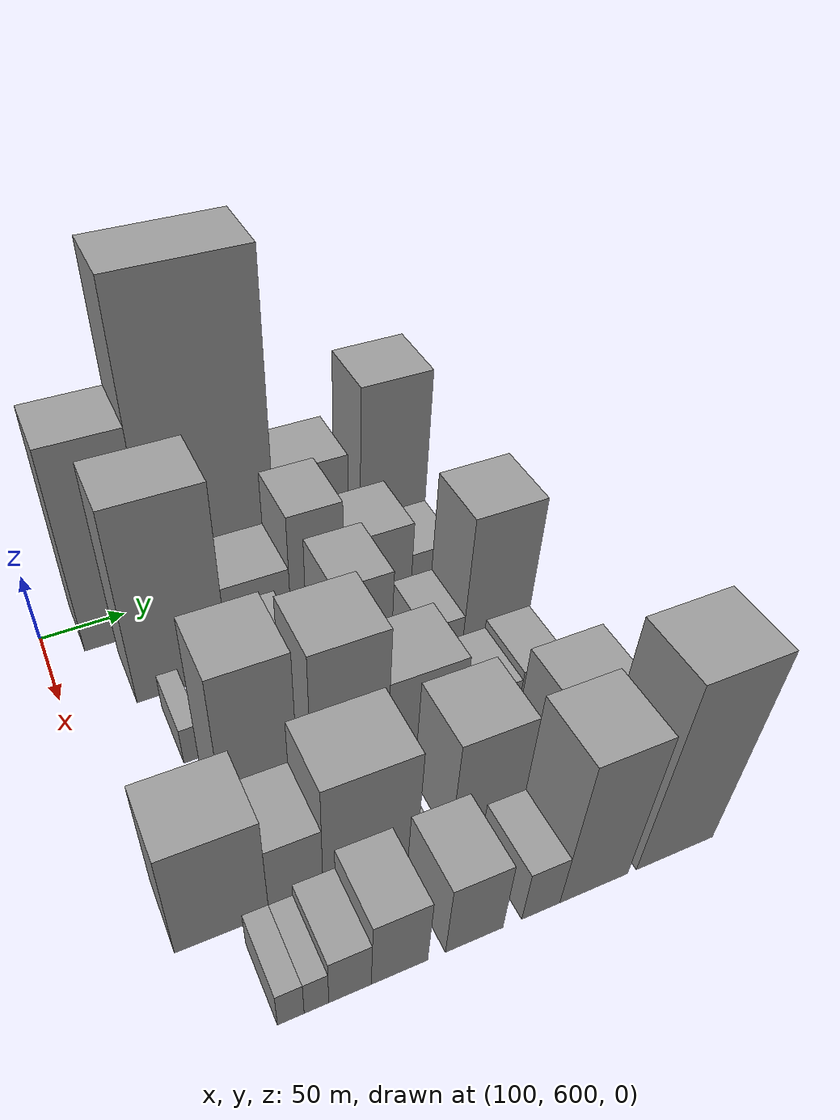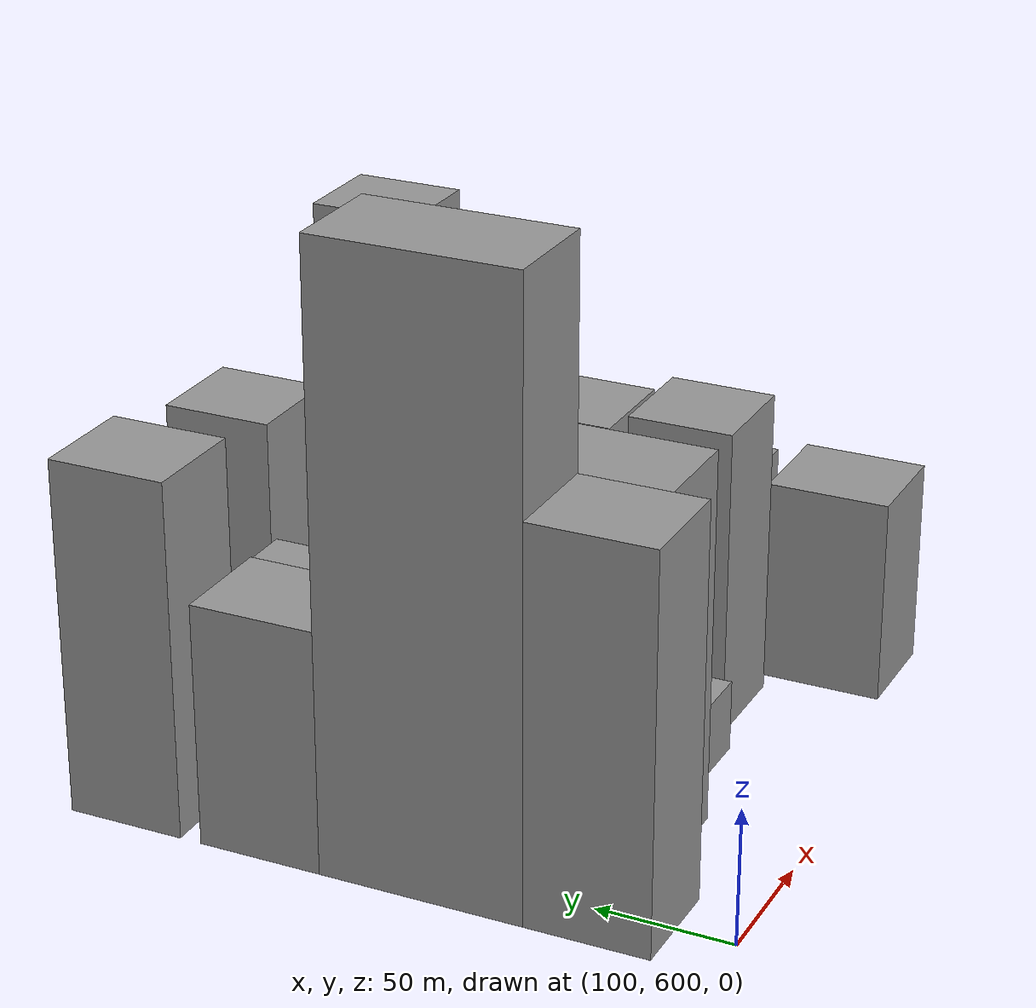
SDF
<sdf version="1.6">
 <world name="default">
  <model name="building_44">
   <static>1</static>
   <pose>100.0000 643.9634 0 0.000000 0.000000 0.000000</pose>
   <link name="link">
    <pose>0 0 72.00 0 0 0</pose>
    <collision name="collision"><geometry><box><size>40.0000 45.0365 144.0000</size></box></geometry></collision>
    <visual name="visual">
     <cast_shadows>0</cast_shadows>
     <geometry><box><size>40.0000 45.0365 144.0000</size></box></geometry>
     <material>
      <script>
       <uri>model://grey_wall/materials/scripts</uri>
       <uri>model://grey_wall/materials/textures</uri>
       <name>vrc/grey_wall</name>
      </script>
     </material>
    </visual>
   </link>
  </model>
  <model name="building_45">
   <static>1</static>
   <pose>100.0000 703.7926 0 0.000000 0.000000 0.000000</pose>
   <link name="link">
    <pose>0 0 112.50 0 0 0</pose>
    <collision name="collision"><geometry><box><size>40.0000 74.6218 225.0000</size></box></geometry></collision>
    <visual name="visual">
     <cast_shadows>0</cast_shadows>
     <geometry><box><size>40.0000 74.6218 225.0000</size></box></geometry>
     <material>
      <script>
       <uri>model://grey_wall/materials/scripts</uri>
       <uri>model://grey_wall/materials/textures</uri>
       <name>vrc/grey_wall</name>
      </script>
     </material>
    </visual>
   </link>
  </model>
  <model name="building_46">
   <static>1</static>
   <pose>100.0000 763.8912 0 0.000000 0.000000 0.000000</pose>
   <link name="link">
    <pose>0 0 45.00 0 0 0</pose>
    <collision name="collision"><geometry><box><size>40.0000 45.5754 90.0000</size></box></geometry></collision>
    <visual name="visual">
     <cast_shadows>0</cast_shadows>
     <geometry><box><size>40.0000 45.5754 90.0000</size></box></geometry>
     <material>
      <script>
       <uri>model://grey_wall/materials/scripts</uri>
       <uri>model://grey_wall/materials/textures</uri>
       <name>vrc/grey_wall</name>
      </script>
     </material>
    </visual>
   </link>
  </model>
  <model name="building_47">
   <static>1</static>
   <pose>100.0000 816.3652 0 0.000000 0.000000 0.000000</pose>
   <link name="link">
    <pose>0 0 66.00 0 0 0</pose>
    <collision name="collision"><geometry><box><size>40.0000 43.3727 132.0000</size></box></geometry></collision>
    <visual name="visual">
     <cast_shadows>0</cast_shadows>
     <geometry><box><size>40.0000 43.3727 132.0000</size></box></geometry>
     <material>
      <script>
       <uri>model://grey_wall/materials/scripts</uri>
       <uri>model://grey_wall/materials/textures</uri>
       <name>vrc/grey_wall</name>
      </script>
     </material>
    </visual>
   </link>
  </model>
  <model name="building_91">
   <static>1</static>
   <pose>149.0000 665.6713 0 0.000000 0.000000 0.000000</pose>
   <link name="link">
    <pose>0 0 69.00 0 0 0</pose>
    <collision name="collision"><geometry><box><size>40.0000 53.8358 138.0000</size></box></geometry></collision>
    <visual name="visual">
     <cast_shadows>0</cast_shadows>
     <geometry><box><size>40.0000 53.8358 138.0000</size></box></geometry>
     <material>
      <script>
       <uri>model://grey_wall/materials/scripts</uri>
       <uri>model://grey_wall/materials/textures</uri>
       <name>vrc/grey_wall</name>
      </script>
     </material>
    </visual>
   </link>
  </model>
  <model name="building_92">
   <static>1</static>
   <pose>149.0000 711.7109 0 0.000000 0.000000 0.000000</pose>
   <link name="link">
    <pose>0 0 33.00 0 0 0</pose>
    <collision name="collision"><geometry><box><size>40.0000 38.2434 66.0000</size></box></geometry></collision>
    <visual name="visual">
     <cast_shadows>0</cast_shadows>
     <geometry><box><size>40.0000 38.2434 66.0000</size></box></geometry>
     <material>
      <script>
       <uri>model://grey_wall/materials/scripts</uri>
       <uri>model://grey_wall/materials/textures</uri>
       <name>vrc/grey_wall</name>
      </script>
     </material>
    </visual>
   </link>
  </model>
  <model name="building_93">
   <static>1</static>
   <pose>149.0000 746.6212 0 0.000000 0.000000 0.000000</pose>
   <link name="link">
    <pose>0 0 51.00 0 0 0</pose>
    <collision name="collision"><geometry><box><size>40.0000 31.5770 102.0000</size></box></geometry></collision>
    <visual name="visual">
     <cast_shadows>0</cast_shadows>
     <geometry><box><size>40.0000 31.5770 102.0000</size></box></geometry>
     <material>
      <script>
       <uri>model://grey_wall/materials/scripts</uri>
       <uri>model://grey_wall/materials/textures</uri>
       <name>vrc/grey_wall</name>
      </script>
     </material>
    </visual>
   </link>
  </model>
  <model name="building_94">
   <static>1</static>
   <pose>149.0000 783.8165 0 0.000000 0.000000 0.000000</pose>
   <link name="link">
    <pose>0 0 36.00 0 0 0</pose>
    <collision name="collision"><geometry><box><size>40.0000 42.8137 72.0000</size></box></geometry></collision>
    <visual name="visual">
     <cast_shadows>0</cast_shadows>
     <geometry><box><size>40.0000 42.8137 72.0000</size></box></geometry>
     <material>
      <script>
       <uri>model://grey_wall/materials/scripts</uri>
       <uri>model://grey_wall/materials/textures</uri>
       <name>vrc/grey_wall</name>
      </script>
     </material>
    </visual>
   </link>
  </model>
  <model name="building_95">
   <static>1</static>
   <pose>149.0000 819.0038 0 0.000000 0.000000 0.000000</pose>
   <link name="link">
    <pose>0 0 24.00 0 0 0</pose>
    <collision name="collision"><geometry><box><size>40.0000 27.5608 48.0000</size></box></geometry></collision>
    <visual name="visual">
     <cast_shadows>0</cast_shadows>
     <geometry><box><size>40.0000 27.5608 48.0000</size></box></geometry>
     <material>
      <script>
       <uri>model://grey_wall/materials/scripts</uri>
       <uri>model://grey_wall/materials/textures</uri>
       <name>vrc/grey_wall</name>
      </script>
     </material>
    </visual>
   </link>
  </model>
  <model name="building_140">
   <static>1</static>
   <pose>198.0000 656.0282 0 0.000000 0.000000 0.000000</pose>
   <link name="link">
    <pose>0 0 13.50 0 0 0</pose>
    <collision name="collision"><geometry><box><size>40.0000 11.6434 27.0000</size></box></geometry></collision>
    <visual name="visual">
     <cast_shadows>0</cast_shadows>
     <geometry><box><size>40.0000 11.6434 27.0000</size></box></geometry>
     <material>
      <script>
       <uri>model://grey_wall/materials/scripts</uri>
       <uri>model://grey_wall/materials/textures</uri>
       <name>vrc/grey_wall</name>
      </script>
     </material>
    </visual>
   </link>
  </model>
  <model name="building_141">
   <static>1</static>
   <pose>198.0000 672.5311 0 0.000000 0.000000 0.000000</pose>
   <link name="link">
    <pose>0 0 9.00 0 0 0</pose>
    <collision name="collision"><geometry><box><size>40.0000 7.3623 18.0000</size></box></geometry></collision>
    <visual name="visual">
     <cast_shadows>0</cast_shadows>
     <geometry><box><size>40.0000 7.3623 18.0000</size></box></geometry>
     <material>
      <script>
       <uri>model://grey_wall/materials/scripts</uri>
       <uri>model://grey_wall/materials/textures</uri>
       <name>vrc/grey_wall</name>
      </script>
     </material>
    </visual>
   </link>
  </model>
  <model name="building_142">
   <static>1</static>
   <pose>198.0000 700.0748 0 0.000000 0.000000 0.000000</pose>
   <link name="link">
    <pose>0 0 31.50 0 0 0</pose>
    <collision name="collision"><geometry><box><size>40.0000 37.7250 63.0000</size></box></geometry></collision>
    <visual name="visual">
     <cast_shadows>0</cast_shadows>
     <geometry><box><size>40.0000 37.7250 63.0000</size></box></geometry>
     <material>
      <script>
       <uri>model://grey_wall/materials/scripts</uri>
       <uri>model://grey_wall/materials/textures</uri>
       <name>vrc/grey_wall</name>
      </script>
     </material>
    </visual>
   </link>
  </model>
  <model name="building_143">
   <static>1</static>
   <pose>198.0000 727.6551 0 0.000000 0.000000 0.000000</pose>
   <link name="link">
    <pose>0 0 15.00 0 0 0</pose>
    <collision name="collision"><geometry><box><size>40.0000 17.4356 30.0000</size></box></geometry></collision>
    <visual name="visual">
     <cast_shadows>0</cast_shadows>
     <geometry><box><size>40.0000 17.4356 30.0000</size></box></geometry>
     <material>
      <script>
       <uri>model://grey_wall/materials/scripts</uri>
       <uri>model://grey_wall/materials/textures</uri>
       <name>vrc/grey_wall</name>
      </script>
     </material>
    </visual>
   </link>
  </model>
  <model name="building_144">
   <static>1</static>
   <pose>198.0000 752.6015 0 0.000000 0.000000 0.000000</pose>
   <link name="link">
    <pose>0 0 46.50 0 0 0</pose>
    <collision name="collision"><geometry><box><size>40.0000 32.4572 93.0000</size></box></geometry></collision>
    <visual name="visual">
     <cast_shadows>0</cast_shadows>
     <geometry><box><size>40.0000 32.4572 93.0000</size></box></geometry>
     <material>
      <script>
       <uri>model://grey_wall/materials/scripts</uri>
       <uri>model://grey_wall/materials/textures</uri>
       <name>vrc/grey_wall</name>
      </script>
     </material>
    </visual>
   </link>
  </model>
  <model name="building_145">
   <static>1</static>
   <pose>198.0000 775.1160 0 0.000000 0.000000 0.000000</pose>
   <link name="link">
    <pose>0 0 13.50 0 0 0</pose>
    <collision name="collision"><geometry><box><size>40.0000 12.5717 27.0000</size></box></geometry></collision>
    <visual name="visual">
     <cast_shadows>0</cast_shadows>
     <geometry><box><size>40.0000 12.5717 27.0000</size></box></geometry>
     <material>
      <script>
       <uri>model://grey_wall/materials/scripts</uri>
       <uri>model://grey_wall/materials/textures</uri>
       <name>vrc/grey_wall</name>
      </script>
     </material>
    </visual>
   </link>
  </model>
  <model name="building_146">
   <static>1</static>
   <pose>198.0000 800.6657 0 0.000000 0.000000 0.000000</pose>
   <link name="link">
    <pose>0 0 21.00 0 0 0</pose>
    <collision name="collision"><geometry><box><size>40.0000 24.5278 42.0000</size></box></geometry></collision>
    <visual name="visual">
     <cast_shadows>0</cast_shadows>
     <geometry><box><size>40.0000 24.5278 42.0000</size></box></geometry>
     <material>
      <script>
       <uri>model://grey_wall/materials/scripts</uri>
       <uri>model://grey_wall/materials/textures</uri>
       <name>vrc/grey_wall</name>
      </script>
     </material>
    </visual>
   </link>
  </model>
  <model name="building_147">
   <static>1</static>
   <pose>198.0000 833.6380 0 0.000000 0.000000 0.000000</pose>
   <link name="link">
    <pose>0 0 55.50 0 0 0</pose>
    <collision name="collision"><geometry><box><size>40.0000 41.4168 111.0000</size></box></geometry></collision>
    <visual name="visual">
     <cast_shadows>0</cast_shadows>
     <geometry><box><size>40.0000 41.4168 111.0000</size></box></geometry>
     <material>
      <script>
       <uri>model://grey_wall/materials/scripts</uri>
       <uri>model://grey_wall/materials/textures</uri>
       <name>vrc/grey_wall</name>
      </script>
     </material>
    </visual>
   </link>
  </model>
  <model name="building_189">
   <static>1</static>
   <pose>247.0000 676.0969 0 0.000000 0.000000 0.000000</pose>
   <link name="link">
    <pose>0 0 58.50 0 0 0</pose>
    <collision name="collision"><geometry><box><size>40.0000 39.1342 117.0000</size></box></geometry></collision>
    <visual name="visual">
     <cast_shadows>0</cast_shadows>
     <geometry><box><size>40.0000 39.1342 117.0000</size></box></geometry>
     <material>
      <script>
       <uri>model://grey_wall/materials/scripts</uri>
       <uri>model://grey_wall/materials/textures</uri>
       <name>vrc/grey_wall</name>
      </script>
     </material>
    </visual>
   </link>
  </model>
  <model name="building_190">
   <static>1</static>
   <pose>247.0000 723.3188 0 0.000000 0.000000 0.000000</pose>
   <link name="link">
    <pose>0 0 55.50 0 0 0</pose>
    <collision name="collision"><geometry><box><size>40.0000 41.3096 111.0000</size></box></geometry></collision>
    <visual name="visual">
     <cast_shadows>0</cast_shadows>
     <geometry><box><size>40.0000 41.3096 111.0000</size></box></geometry>
     <material>
      <script>
       <uri>model://grey_wall/materials/scripts</uri>
       <uri>model://grey_wall/materials/textures</uri>
       <name>vrc/grey_wall</name>
      </script>
     </material>
    </visual>
   </link>
  </model>
  <model name="building_191">
   <static>1</static>
   <pose>247.0000 765.5100 0 0.000000 0.000000 0.000000</pose>
   <link name="link">
    <pose>0 0 36.00 0 0 0</pose>
    <collision name="collision"><geometry><box><size>40.0000 43.0729 72.0000</size></box></geometry></collision>
    <visual name="visual">
     <cast_shadows>0</cast_shadows>
     <geometry><box><size>40.0000 43.0729 72.0000</size></box></geometry>
     <material>
      <script>
       <uri>model://grey_wall/materials/scripts</uri>
       <uri>model://grey_wall/materials/textures</uri>
       <name>vrc/grey_wall</name>
      </script>
     </material>
    </visual>
   </link>
  </model>
  <model name="building_192">
   <static>1</static>
   <pose>247.0000 808.7103 0 0.000000 0.000000 0.000000</pose>
   <link name="link">
    <pose>0 0 19.50 0 0 0</pose>
    <collision name="collision"><geometry><box><size>40.0000 23.3276 39.0000</size></box></geometry></collision>
    <visual name="visual">
     <cast_shadows>0</cast_shadows>
     <geometry><box><size>40.0000 23.3276 39.0000</size></box></geometry>
     <material>
      <script>
       <uri>model://grey_wall/materials/scripts</uri>
       <uri>model://grey_wall/materials/textures</uri>
       <name>vrc/grey_wall</name>
      </script>
     </material>
    </visual>
   </link>
  </model>
  <model name="building_193">
   <static>1</static>
   <pose>247.0000 833.5315 0 0.000000 0.000000 0.000000</pose>
   <link name="link">
    <pose>0 0 22.50 0 0 0</pose>
    <collision name="collision"><geometry><box><size>40.0000 26.3148 45.0000</size></box></geometry></collision>
    <visual name="visual">
     <cast_shadows>0</cast_shadows>
     <geometry><box><size>40.0000 26.3148 45.0000</size></box></geometry>
     <material>
      <script>
       <uri>model://grey_wall/materials/scripts</uri>
       <uri>model://grey_wall/materials/textures</uri>
       <name>vrc/grey_wall</name>
      </script>
     </material>
    </visual>
   </link>
  </model>
  <model name="building_239">
   <static>1</static>
   <pose>296.0000 637.8852 0 0.000000 0.000000 0.000000</pose>
   <link name="link">
    <pose>0 0 39.00 0 0 0</pose>
    <collision name="collision"><geometry><box><size>40.0000 45.7086 78.0000</size></box></geometry></collision>
    <visual name="visual">
     <cast_shadows>0</cast_shadows>
     <geometry><box><size>40.0000 45.7086 78.0000</size></box></geometry>
     <material>
      <script>
       <uri>model://grey_wall/materials/scripts</uri>
       <uri>model://grey_wall/materials/textures</uri>
       <name>vrc/grey_wall</name>
      </script>
     </material>
    </visual>
   </link>
  </model>
  <model name="building_240">
   <static>1</static>
   <pose>296.0000 674.3460 0 0.000000 0.000000 0.000000</pose>
   <link name="link">
    <pose>0 0 27.00 0 0 0</pose>
    <collision name="collision"><geometry><box><size>40.0000 27.2130 54.0000</size></box></geometry></collision>
    <visual name="visual">
     <cast_shadows>0</cast_shadows>
     <geometry><box><size>40.0000 27.2130 54.0000</size></box></geometry>
     <material>
      <script>
       <uri>model://grey_wall/materials/scripts</uri>
       <uri>model://grey_wall/materials/textures</uri>
       <name>vrc/grey_wall</name>
      </script>
     </material>
    </visual>
   </link>
  </model>
  <model name="building_241">
   <static>1</static>
   <pose>296.0000 712.4010 0 0.000000 0.000000 0.000000</pose>
   <link name="link">
    <pose>0 0 42.00 0 0 0</pose>
    <collision name="collision"><geometry><box><size>40.0000 48.8971 84.0000</size></box></geometry></collision>
    <visual name="visual">
     <cast_shadows>0</cast_shadows>
     <geometry><box><size>40.0000 48.8971 84.0000</size></box></geometry>
     <material>
      <script>
       <uri>model://grey_wall/materials/scripts</uri>
       <uri>model://grey_wall/materials/textures</uri>
       <name>vrc/grey_wall</name>
      </script>
     </material>
    </visual>
   </link>
  </model>
  <model name="building_242">
   <static>1</static>
   <pose>296.0000 741.2195 0 0.000000 0.000000 0.000000</pose>
   <link name="link">
    <pose>0 0 9.00 0 0 0</pose>
    <collision name="collision"><geometry><box><size>40.0000 8.7399 18.0000</size></box></geometry></collision>
    <visual name="visual">
     <cast_shadows>0</cast_shadows>
     <geometry><box><size>40.0000 8.7399 18.0000</size></box></geometry>
     <material>
      <script>
       <uri>model://grey_wall/materials/scripts</uri>
       <uri>model://grey_wall/materials/textures</uri>
       <name>vrc/grey_wall</name>
      </script>
     </material>
    </visual>
   </link>
  </model>
  <model name="building_243">
   <static>1</static>
   <pose>296.0000 775.5981 0 0.000000 0.000000 0.000000</pose>
   <link name="link">
    <pose>0 0 39.00 0 0 0</pose>
    <collision name="collision"><geometry><box><size>40.0000 40.0173 78.0000</size></box></geometry></collision>
    <visual name="visual">
     <cast_shadows>0</cast_shadows>
     <geometry><box><size>40.0000 40.0173 78.0000</size></box></geometry>
     <material>
      <script>
       <uri>model://grey_wall/materials/scripts</uri>
       <uri>model://grey_wall/materials/textures</uri>
       <name>vrc/grey_wall</name>
      </script>
     </material>
    </visual>
   </link>
  </model>
  <model name="building_244">
   <static>1</static>
   <pose>296.0000 806.4817 0 0.000000 0.000000 0.000000</pose>
   <link name="link">
    <pose>0 0 15.00 0 0 0</pose>
    <collision name="collision"><geometry><box><size>40.0000 15.7498 30.0000</size></box></geometry></collision>
    <visual name="visual">
     <cast_shadows>0</cast_shadows>
     <geometry><box><size>40.0000 15.7498 30.0000</size></box></geometry>
     <material>
      <script>
       <uri>model://grey_wall/materials/scripts</uri>
       <uri>model://grey_wall/materials/textures</uri>
       <name>vrc/grey_wall</name>
      </script>
     </material>
    </visual>
   </link>
  </model>
  <model name="building_245">
   <static>1</static>
   <pose>296.0000 834.7275 0 0.000000 0.000000 0.000000</pose>
   <link name="link">
    <pose>0 0 37.50 0 0 0</pose>
    <collision name="collision"><geometry><box><size>40.0000 40.7418 75.0000</size></box></geometry></collision>
    <visual name="visual">
     <cast_shadows>0</cast_shadows>
     <geometry><box><size>40.0000 40.7418 75.0000</size></box></geometry>
     <material>
      <script>
       <uri>model://grey_wall/materials/scripts</uri>
       <uri>model://grey_wall/materials/textures</uri>
       <name>vrc/grey_wall</name>
      </script>
     </material>
    </visual>
   </link>
  </model>
  <model name="building_291">
   <static>1</static>
   <pose>345.0000 652.2162 0 0.000000 0.000000 0.000000</pose>
   <link name="link">
    <pose>0 0 13.50 0 0 0</pose>
    <collision name="collision"><geometry><box><size>40.0000 12.3970 27.0000</size></box></geometry></collision>
    <visual name="visual">
     <cast_shadows>0</cast_shadows>
     <geometry><box><size>40.0000 12.3970 27.0000</size></box></geometry>
     <material>
      <script>
       <uri>model://grey_wall/materials/scripts</uri>
       <uri>model://grey_wall/materials/textures</uri>
       <name>vrc/grey_wall</name>
      </script>
     </material>
    </visual>
   </link>
  </model>
  <model name="building_292">
   <static>1</static>
   <pose>345.0000 664.1819 0 0.000000 0.000000 0.000000</pose>
   <link name="link">
    <pose>0 0 13.50 0 0 0</pose>
    <collision name="collision"><geometry><box><size>40.0000 11.5345 27.0000</size></box></geometry></collision>
    <visual name="visual">
     <cast_shadows>0</cast_shadows>
     <geometry><box><size>40.0000 11.5345 27.0000</size></box></geometry>
     <material>
      <script>
       <uri>model://grey_wall/materials/scripts</uri>
       <uri>model://grey_wall/materials/textures</uri>
       <name>vrc/grey_wall</name>
      </script>
     </material>
    </visual>
   </link>
  </model>
  <model name="building_293">
   <static>1</static>
   <pose>345.0000 680.1515 0 0.000000 0.000000 0.000000</pose>
   <link name="link">
    <pose>0 0 18.00 0 0 0</pose>
    <collision name="collision"><geometry><box><size>40.0000 20.4046 36.0000</size></box></geometry></collision>
    <visual name="visual">
     <cast_shadows>0</cast_shadows>
     <geometry><box><size>40.0000 20.4046 36.0000</size></box></geometry>
     <material>
      <script>
       <uri>model://grey_wall/materials/scripts</uri>
       <uri>model://grey_wall/materials/textures</uri>
       <name>vrc/grey_wall</name>
      </script>
     </material>
    </visual>
   </link>
  </model>
  <model name="building_294">
   <static>1</static>
   <pose>345.0000 704.2944 0 0.000000 0.000000 0.000000</pose>
   <link name="link">
    <pose>0 0 25.50 0 0 0</pose>
    <collision name="collision"><geometry><box><size>40.0000 27.8813 51.0000</size></box></geometry></collision>
    <visual name="visual">
     <cast_shadows>0</cast_shadows>
     <geometry><box><size>40.0000 27.8813 51.0000</size></box></geometry>
     <material>
      <script>
       <uri>model://grey_wall/materials/scripts</uri>
       <uri>model://grey_wall/materials/textures</uri>
       <name>vrc/grey_wall</name>
      </script>
     </material>
    </visual>
   </link>
  </model>
  <model name="building_295">
   <static>1</static>
   <pose>345.0000 742.1082 0 0.000000 0.000000 0.000000</pose>
   <link name="link">
    <pose>0 0 27.00 0 0 0</pose>
    <collision name="collision"><geometry><box><size>40.0000 29.7463 54.0000</size></box></geometry></collision>
    <visual name="visual">
     <cast_shadows>0</cast_shadows>
     <geometry><box><size>40.0000 29.7463 54.0000</size></box></geometry>
     <material>
      <script>
       <uri>model://grey_wall/materials/scripts</uri>
       <uri>model://grey_wall/materials/textures</uri>
       <name>vrc/grey_wall</name>
      </script>
     </material>
    </visual>
   </link>
  </model>
  <model name="building_296">
   <static>1</static>
   <pose>345.0000 777.2479 0 0.000000 0.000000 0.000000</pose>
   <link name="link">
    <pose>0 0 19.50 0 0 0</pose>
    <collision name="collision"><geometry><box><size>40.0000 20.5331 39.0000</size></box></geometry></collision>
    <visual name="visual">
     <cast_shadows>0</cast_shadows>
     <geometry><box><size>40.0000 20.5331 39.0000</size></box></geometry>
     <material>
      <script>
       <uri>model://grey_wall/materials/scripts</uri>
       <uri>model://grey_wall/materials/textures</uri>
       <name>vrc/grey_wall</name>
      </script>
     </material>
    </visual>
   </link>
  </model>
  <model name="building_297">
   <static>1</static>
   <pose>345.0000 806.4580 0 0.000000 0.000000 0.000000</pose>
   <link name="link">
    <pose>0 0 54.00 0 0 0</pose>
    <collision name="collision"><geometry><box><size>40.0000 37.8870 108.0000</size></box></geometry></collision>
    <visual name="visual">
     <cast_shadows>0</cast_shadows>
     <geometry><box><size>40.0000 37.8870 108.0000</size></box></geometry>
     <material>
      <script>
       <uri>model://grey_wall/materials/scripts</uri>
       <uri>model://grey_wall/materials/textures</uri>
       <name>vrc/grey_wall</name>
      </script>
     </material>
    </visual>
   </link>
  </model>
  <model name="building_298">
   <static>1</static>
   <pose>345.0000 852.7676 0 0.000000 0.000000 0.000000</pose>
   <link name="link">
    <pose>0 0 69.00 0 0 0</pose>
    <collision name="collision"><geometry><box><size>40.0000 44.7324 138.0000</size></box></geometry></collision>
    <visual name="visual">
     <cast_shadows>0</cast_shadows>
     <geometry><box><size>40.0000 44.7324 138.0000</size></box></geometry>
     <material>
      <script>
       <uri>model://grey_wall/materials/scripts</uri>
       <uri>model://grey_wall/materials/textures</uri>
       <name>vrc/grey_wall</name>
      </script>
     </material>
    </visual>
   </link>
  </model>
 </world>
</sdf>
